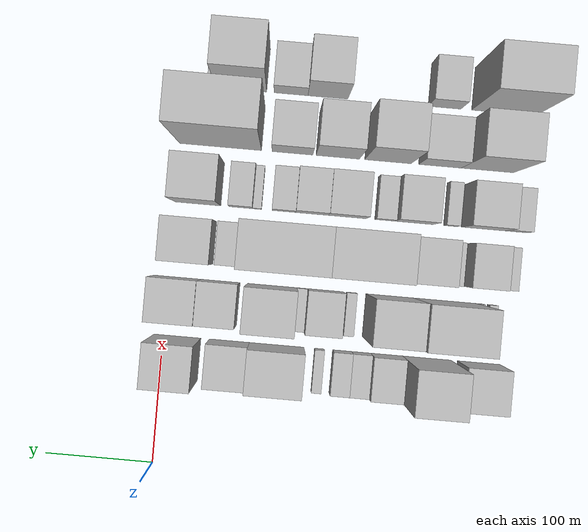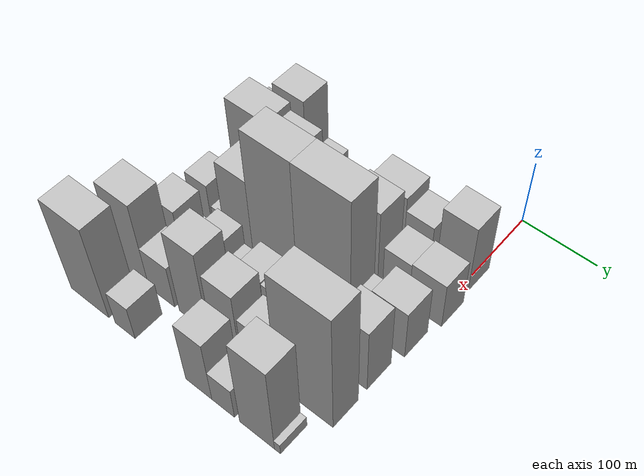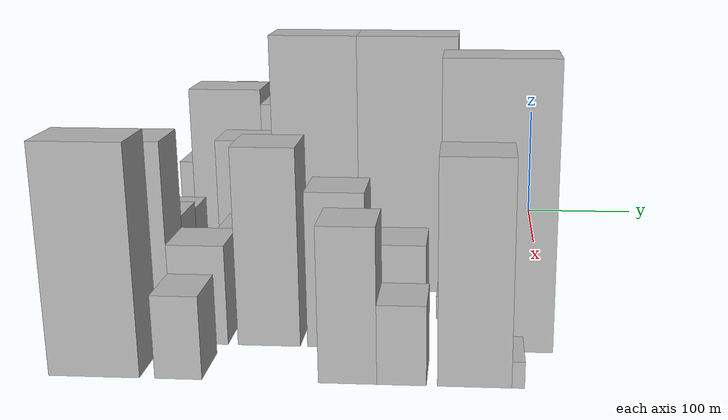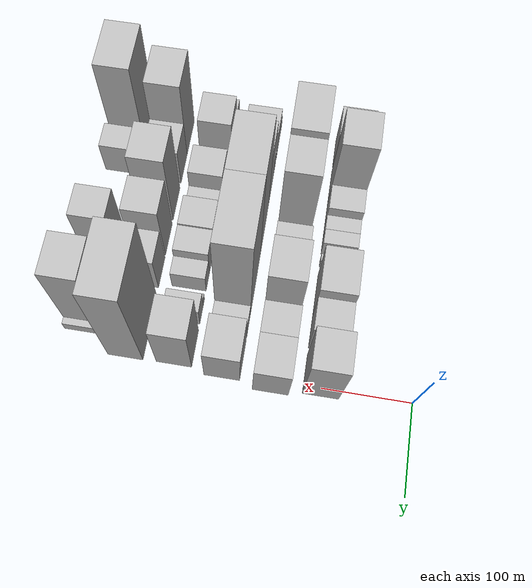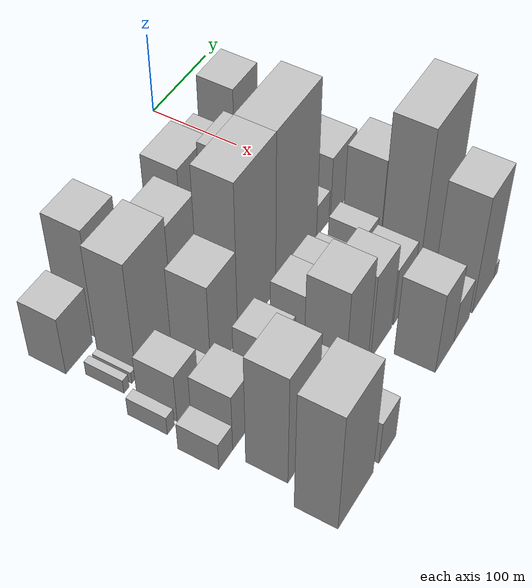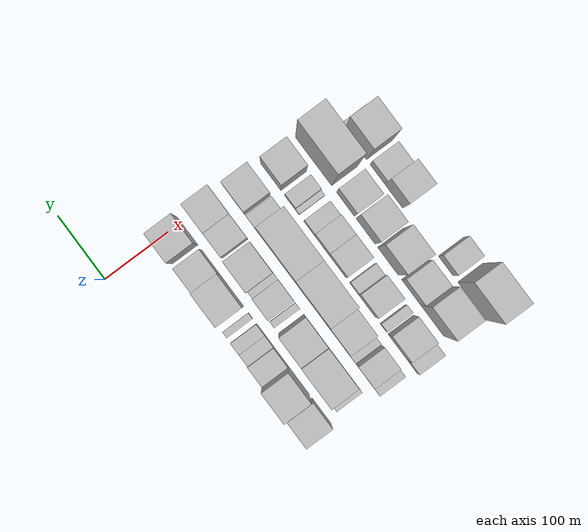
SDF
<sdf version="1.6">
 <world name="default">
  <model name="building_16">
   <static>1</static>
   <pose>100.0000 -296.1378 0 0.000000 0.000000 0.000000</pose>
   <link name="link">
    <pose>0 0 37.50 0 0 0</pose>
    <collision name="collision"><geometry><box><size>40.0000 39.8042 75.0000</size></box></geometry></collision>
    <visual name="visual">
     <cast_shadows>0</cast_shadows>
     <geometry><box><size>40.0000 39.8042 75.0000</size></box></geometry>
     <material>
      <script>
       <uri>model://HANNAS_wall/materials/scripts</uri>
       <uri>model://HANNAS_wall/materials/textures</uri>
       <name>vrc/HANNAS_wall</name>
      </script>
     </material>
    </visual>
   </link>
  </model>
  <model name="building_17">
   <static>1</static>
   <pose>100.0000 -247.5709 0 0.000000 0.000000 0.000000</pose>
   <link name="link">
    <pose>0 0 70.50 0 0 0</pose>
    <collision name="collision"><geometry><box><size>40.0000 45.3294 141.0000</size></box></geometry></collision>
    <visual name="visual">
     <cast_shadows>0</cast_shadows>
     <geometry><box><size>40.0000 45.3294 141.0000</size></box></geometry>
     <material>
      <script>
       <uri>model://HANNAS_wall/materials/scripts</uri>
       <uri>model://HANNAS_wall/materials/textures</uri>
       <name>vrc/HANNAS_wall</name>
      </script>
     </material>
    </visual>
   </link>
  </model>
  <model name="building_18">
   <static>1</static>
   <pose>100.0000 -209.9071 0 0.000000 0.000000 0.000000</pose>
   <link name="link">
    <pose>0 0 25.50 0 0 0</pose>
    <collision name="collision"><geometry><box><size>40.0000 29.9982 51.0000</size></box></geometry></collision>
    <visual name="visual">
     <cast_shadows>0</cast_shadows>
     <geometry><box><size>40.0000 29.9982 51.0000</size></box></geometry>
     <material>
      <script>
       <uri>model://HANNAS_wall/materials/scripts</uri>
       <uri>model://HANNAS_wall/materials/textures</uri>
       <name>vrc/HANNAS_wall</name>
      </script>
     </material>
    </visual>
   </link>
  </model>
  <model name="building_19">
   <static>1</static>
   <pose>100.0000 -185.9173 0 0.000000 0.000000 0.000000</pose>
   <link name="link">
    <pose>0 0 16.50 0 0 0</pose>
    <collision name="collision"><geometry><box><size>40.0000 17.9815 33.0000</size></box></geometry></collision>
    <visual name="visual">
     <cast_shadows>0</cast_shadows>
     <geometry><box><size>40.0000 17.9815 33.0000</size></box></geometry>
     <material>
      <script>
       <uri>model://HANNAS_wall/materials/scripts</uri>
       <uri>model://HANNAS_wall/materials/textures</uri>
       <name>vrc/HANNAS_wall</name>
      </script>
     </material>
    </visual>
   </link>
  </model>
  <model name="building_20">
   <static>1</static>
   <pose>100.0000 -167.9910 0 0.000000 0.000000 0.000000</pose>
   <link name="link">
    <pose>0 0 16.50 0 0 0</pose>
    <collision name="collision"><geometry><box><size>40.0000 17.8710 33.0000</size></box></geometry></collision>
    <visual name="visual">
     <cast_shadows>0</cast_shadows>
     <geometry><box><size>40.0000 17.8710 33.0000</size></box></geometry>
     <material>
      <script>
       <uri>model://HANNAS_wall/materials/scripts</uri>
       <uri>model://HANNAS_wall/materials/textures</uri>
       <name>vrc/HANNAS_wall</name>
      </script>
     </material>
    </visual>
   </link>
  </model>
  <model name="building_21">
   <static>1</static>
   <pose>100.0000 -146.5413 0 0.000000 0.000000 0.000000</pose>
   <link name="link">
    <pose>0 0 10.50 0 0 0</pose>
    <collision name="collision"><geometry><box><size>40.0000 9.0284 21.0000</size></box></geometry></collision>
    <visual name="visual">
     <cast_shadows>0</cast_shadows>
     <geometry><box><size>40.0000 9.0284 21.0000</size></box></geometry>
     <material>
      <script>
       <uri>model://HANNAS_wall/materials/scripts</uri>
       <uri>model://HANNAS_wall/materials/textures</uri>
       <name>vrc/HANNAS_wall</name>
      </script>
     </material>
    </visual>
   </link>
  </model>
  <model name="building_22">
   <static>1</static>
   <pose>100.0000 -106.4332 0 0.000000 0.000000 0.000000</pose>
   <link name="link">
    <pose>0 0 45.00 0 0 0</pose>
    <collision name="collision"><geometry><box><size>40.0000 51.1879 90.0000</size></box></geometry></collision>
    <visual name="visual">
     <cast_shadows>0</cast_shadows>
     <geometry><box><size>40.0000 51.1879 90.0000</size></box></geometry>
     <material>
      <script>
       <uri>model://HANNAS_wall/materials/scripts</uri>
       <uri>model://HANNAS_wall/materials/textures</uri>
       <name>vrc/HANNAS_wall</name>
      </script>
     </material>
    </visual>
   </link>
  </model>
  <model name="building_23">
   <static>1</static>
   <pose>100.0000 -62.1196 0 0.000000 0.000000 0.000000</pose>
   <link name="link">
    <pose>0 0 34.50 0 0 0</pose>
    <collision name="collision"><geometry><box><size>40.0000 37.4392 69.0000</size></box></geometry></collision>
    <visual name="visual">
     <cast_shadows>0</cast_shadows>
     <geometry><box><size>40.0000 37.4392 69.0000</size></box></geometry>
     <material>
      <script>
       <uri>model://HANNAS_wall/materials/scripts</uri>
       <uri>model://HANNAS_wall/materials/textures</uri>
       <name>vrc/HANNAS_wall</name>
      </script>
     </material>
    </visual>
   </link>
  </model>
  <model name="building_24">
   <static>1</static>
   <pose>100.0000 -13.4017 0 0.000000 0.000000 0.000000</pose>
   <link name="link">
    <pose>0 0 55.50 0 0 0</pose>
    <collision name="collision"><geometry><box><size>40.0000 43.9966 111.0000</size></box></geometry></collision>
    <visual name="visual">
     <cast_shadows>0</cast_shadows>
     <geometry><box><size>40.0000 43.9966 111.0000</size></box></geometry>
     <material>
      <script>
       <uri>model://HANNAS_wall/materials/scripts</uri>
       <uri>model://HANNAS_wall/materials/textures</uri>
       <name>vrc/HANNAS_wall</name>
      </script>
     </material>
    </visual>
   </link>
  </model>
  <model name="building_70">
   <static>1</static>
   <pose>155.0000 -303.4905 0 0.000000 0.000000 0.000000</pose>
   <link name="link">
    <pose>0 0 9.00 0 0 0</pose>
    <collision name="collision"><geometry><box><size>40.0000 7.8875 18.0000</size></box></geometry></collision>
    <visual name="visual">
     <cast_shadows>0</cast_shadows>
     <geometry><box><size>40.0000 7.8875 18.0000</size></box></geometry>
     <material>
      <script>
       <uri>model://HANNAS_wall/materials/scripts</uri>
       <uri>model://HANNAS_wall/materials/textures</uri>
       <name>vrc/HANNAS_wall</name>
      </script>
     </material>
    </visual>
   </link>
  </model>
  <model name="building_71">
   <static>1</static>
   <pose>155.0000 -292.1097 0 0.000000 0.000000 0.000000</pose>
   <link name="link">
    <pose>0 0 7.50 0 0 0</pose>
    <collision name="collision"><geometry><box><size>40.0000 6.8742 15.0000</size></box></geometry></collision>
    <visual name="visual">
     <cast_shadows>0</cast_shadows>
     <geometry><box><size>40.0000 6.8742 15.0000</size></box></geometry>
     <material>
      <script>
       <uri>model://HANNAS_wall/materials/scripts</uri>
       <uri>model://HANNAS_wall/materials/textures</uri>
       <name>vrc/HANNAS_wall</name>
      </script>
     </material>
    </visual>
   </link>
  </model>
  <model name="building_72">
   <static>1</static>
   <pose>155.0000 -259.3034 0 0.000000 0.000000 0.000000</pose>
   <link name="link">
    <pose>0 0 75.00 0 0 0</pose>
    <collision name="collision"><geometry><box><size>40.0000 58.7383 150.0000</size></box></geometry></collision>
    <visual name="visual">
     <cast_shadows>0</cast_shadows>
     <geometry><box><size>40.0000 58.7383 150.0000</size></box></geometry>
     <material>
      <script>
       <uri>model://HANNAS_wall/materials/scripts</uri>
       <uri>model://HANNAS_wall/materials/textures</uri>
       <name>vrc/HANNAS_wall</name>
      </script>
     </material>
    </visual>
   </link>
  </model>
  <model name="building_73">
   <static>1</static>
   <pose>155.0000 -207.7042 0 0.000000 0.000000 0.000000</pose>
   <link name="link">
    <pose>0 0 69.00 0 0 0</pose>
    <collision name="collision"><geometry><box><size>40.0000 44.4602 138.0000</size></box></geometry></collision>
    <visual name="visual">
     <cast_shadows>0</cast_shadows>
     <geometry><box><size>40.0000 44.4602 138.0000</size></box></geometry>
     <material>
      <script>
       <uri>model://HANNAS_wall/materials/scripts</uri>
       <uri>model://HANNAS_wall/materials/textures</uri>
       <name>vrc/HANNAS_wall</name>
      </script>
     </material>
    </visual>
   </link>
  </model>
  <model name="building_74">
   <static>1</static>
   <pose>155.0000 -171.7749 0 0.000000 0.000000 0.000000</pose>
   <link name="link">
    <pose>0 0 10.50 0 0 0</pose>
    <collision name="collision"><geometry><box><size>40.0000 9.3984 21.0000</size></box></geometry></collision>
    <visual name="visual">
     <cast_shadows>0</cast_shadows>
     <geometry><box><size>40.0000 9.3984 21.0000</size></box></geometry>
     <material>
      <script>
       <uri>model://HANNAS_wall/materials/scripts</uri>
       <uri>model://HANNAS_wall/materials/textures</uri>
       <name>vrc/HANNAS_wall</name>
      </script>
     </material>
    </visual>
   </link>
  </model>
  <model name="building_75">
   <static>1</static>
   <pose>155.0000 -147.3558 0 0.000000 0.000000 0.000000</pose>
   <link name="link">
    <pose>0 0 31.50 0 0 0</pose>
    <collision name="collision"><geometry><box><size>40.0000 33.4397 63.0000</size></box></geometry></collision>
    <visual name="visual">
     <cast_shadows>0</cast_shadows>
     <geometry><box><size>40.0000 33.4397 63.0000</size></box></geometry>
     <material>
      <script>
       <uri>model://HANNAS_wall/materials/scripts</uri>
       <uri>model://HANNAS_wall/materials/textures</uri>
       <name>vrc/HANNAS_wall</name>
      </script>
     </material>
    </visual>
   </link>
  </model>
  <model name="building_76">
   <static>1</static>
   <pose>155.0000 -125.5573 0 0.000000 0.000000 0.000000</pose>
   <link name="link">
    <pose>0 0 10.50 0 0 0</pose>
    <collision name="collision"><geometry><box><size>40.0000 10.1575 21.0000</size></box></geometry></collision>
    <visual name="visual">
     <cast_shadows>0</cast_shadows>
     <geometry><box><size>40.0000 10.1575 21.0000</size></box></geometry>
     <material>
      <script>
       <uri>model://HANNAS_wall/materials/scripts</uri>
       <uri>model://HANNAS_wall/materials/textures</uri>
       <name>vrc/HANNAS_wall</name>
      </script>
     </material>
    </visual>
   </link>
  </model>
  <model name="building_77">
   <static>1</static>
   <pose>155.0000 -97.4582 0 0.000000 0.000000 0.000000</pose>
   <link name="link">
    <pose>0 0 61.50 0 0 0</pose>
    <collision name="collision"><geometry><box><size>40.0000 46.0406 123.0000</size></box></geometry></collision>
    <visual name="visual">
     <cast_shadows>0</cast_shadows>
     <geometry><box><size>40.0000 46.0406 123.0000</size></box></geometry>
     <material>
      <script>
       <uri>model://HANNAS_wall/materials/scripts</uri>
       <uri>model://HANNAS_wall/materials/textures</uri>
       <name>vrc/HANNAS_wall</name>
      </script>
     </material>
    </visual>
   </link>
  </model>
  <model name="building_78">
   <static>1</static>
   <pose>155.0000 -49.2746 0 0.000000 0.000000 0.000000</pose>
   <link name="link">
    <pose>0 0 36.00 0 0 0</pose>
    <collision name="collision"><geometry><box><size>40.0000 36.3266 72.0000</size></box></geometry></collision>
    <visual name="visual">
     <cast_shadows>0</cast_shadows>
     <geometry><box><size>40.0000 36.3266 72.0000</size></box></geometry>
     <material>
      <script>
       <uri>model://HANNAS_wall/materials/scripts</uri>
       <uri>model://HANNAS_wall/materials/textures</uri>
       <name>vrc/HANNAS_wall</name>
      </script>
     </material>
    </visual>
   </link>
  </model>
  <model name="building_79">
   <static>1</static>
   <pose>155.0000 -8.9823 0 0.000000 0.000000 0.000000</pose>
   <link name="link">
    <pose>0 0 37.50 0 0 0</pose>
    <collision name="collision"><geometry><box><size>40.0000 44.2579 75.0000</size></box></geometry></collision>
    <visual name="visual">
     <cast_shadows>0</cast_shadows>
     <geometry><box><size>40.0000 44.2579 75.0000</size></box></geometry>
     <material>
      <script>
       <uri>model://HANNAS_wall/materials/scripts</uri>
       <uri>model://HANNAS_wall/materials/textures</uri>
       <name>vrc/HANNAS_wall</name>
      </script>
     </material>
    </visual>
   </link>
  </model>
  <model name="building_117">
   <static>1</static>
   <pose>210.0000 -318.1123 0 0.000000 0.000000 0.000000</pose>
   <link name="link">
    <pose>0 0 12.00 0 0 0</pose>
    <collision name="collision"><geometry><box><size>40.0000 10.9573 24.0000</size></box></geometry></collision>
    <visual name="visual">
     <cast_shadows>0</cast_shadows>
     <geometry><box><size>40.0000 10.9573 24.0000</size></box></geometry>
     <material>
      <script>
       <uri>model://HANNAS_wall/materials/scripts</uri>
       <uri>model://HANNAS_wall/materials/textures</uri>
       <name>vrc/HANNAS_wall</name>
      </script>
     </material>
    </visual>
   </link>
  </model>
  <model name="building_118">
   <static>1</static>
   <pose>210.0000 -291.8791 0 0.000000 0.000000 0.000000</pose>
   <link name="link">
    <pose>0 0 31.50 0 0 0</pose>
    <collision name="collision"><geometry><box><size>40.0000 33.5091 63.0000</size></box></geometry></collision>
    <visual name="visual">
     <cast_shadows>0</cast_shadows>
     <geometry><box><size>40.0000 33.5091 63.0000</size></box></geometry>
     <material>
      <script>
       <uri>model://HANNAS_wall/materials/scripts</uri>
       <uri>model://HANNAS_wall/materials/textures</uri>
       <name>vrc/HANNAS_wall</name>
      </script>
     </material>
    </visual>
   </link>
  </model>
  <model name="building_119">
   <static>1</static>
   <pose>210.0000 -263.5239 0 0.000000 0.000000 0.000000</pose>
   <link name="link">
    <pose>0 0 15.00 0 0 0</pose>
    <collision name="collision"><geometry><box><size>40.0000 17.2013 30.0000</size></box></geometry></collision>
    <visual name="visual">
     <cast_shadows>0</cast_shadows>
     <geometry><box><size>40.0000 17.2013 30.0000</size></box></geometry>
     <material>
      <script>
       <uri>model://HANNAS_wall/materials/scripts</uri>
       <uri>model://HANNAS_wall/materials/textures</uri>
       <name>vrc/HANNAS_wall</name>
      </script>
     </material>
    </visual>
   </link>
  </model>
  <model name="building_120">
   <static>1</static>
   <pose>210.0000 -232.6788 0 0.000000 0.000000 0.000000</pose>
   <link name="link">
    <pose>0 0 60.00 0 0 0</pose>
    <collision name="collision"><geometry><box><size>40.0000 44.4890 120.0000</size></box></geometry></collision>
    <visual name="visual">
     <cast_shadows>0</cast_shadows>
     <geometry><box><size>40.0000 44.4890 120.0000</size></box></geometry>
     <material>
      <script>
       <uri>model://HANNAS_wall/materials/scripts</uri>
       <uri>model://HANNAS_wall/materials/textures</uri>
       <name>vrc/HANNAS_wall</name>
      </script>
     </material>
    </visual>
   </link>
  </model>
  <model name="building_121">
   <static>1</static>
   <pose>210.0000 -177.3393 0 0.000000 0.000000 0.000000</pose>
   <link name="link">
    <pose>0 0 100.50 0 0 0</pose>
    <collision name="collision"><geometry><box><size>40.0000 66.1899 201.0000</size></box></geometry></collision>
    <visual name="visual">
     <cast_shadows>0</cast_shadows>
     <geometry><box><size>40.0000 66.1899 201.0000</size></box></geometry>
     <material>
      <script>
       <uri>model://HANNAS_wall/materials/scripts</uri>
       <uri>model://HANNAS_wall/materials/textures</uri>
       <name>vrc/HANNAS_wall</name>
      </script>
     </material>
    </visual>
   </link>
  </model>
  <model name="building_122">
   <static>1</static>
   <pose>210.0000 -106.1321 0 0.000000 0.000000 0.000000</pose>
   <link name="link">
    <pose>0 0 100.50 0 0 0</pose>
    <collision name="collision"><geometry><box><size>40.0000 76.2245 201.0000</size></box></geometry></collision>
    <visual name="visual">
     <cast_shadows>0</cast_shadows>
     <geometry><box><size>40.0000 76.2245 201.0000</size></box></geometry>
     <material>
      <script>
       <uri>model://HANNAS_wall/materials/scripts</uri>
       <uri>model://HANNAS_wall/materials/textures</uri>
       <name>vrc/HANNAS_wall</name>
      </script>
     </material>
    </visual>
   </link>
  </model>
  <model name="building_123">
   <static>1</static>
   <pose>210.0000 -55.7911 0 0.000000 0.000000 0.000000</pose>
   <link name="link">
    <pose>0 0 21.00 0 0 0</pose>
    <collision name="collision"><geometry><box><size>40.0000 24.4575 42.0000</size></box></geometry></collision>
    <visual name="visual">
     <cast_shadows>0</cast_shadows>
     <geometry><box><size>40.0000 24.4575 42.0000</size></box></geometry>
     <material>
      <script>
       <uri>model://HANNAS_wall/materials/scripts</uri>
       <uri>model://HANNAS_wall/materials/textures</uri>
       <name>vrc/HANNAS_wall</name>
      </script>
     </material>
    </visual>
   </link>
  </model>
  <model name="building_124">
   <static>1</static>
   <pose>210.0000 -17.4130 0 0.000000 0.000000 0.000000</pose>
   <link name="link">
    <pose>0 0 40.50 0 0 0</pose>
    <collision name="collision"><geometry><box><size>40.0000 46.2987 81.0000</size></box></geometry></collision>
    <visual name="visual">
     <cast_shadows>0</cast_shadows>
     <geometry><box><size>40.0000 46.2987 81.0000</size></box></geometry>
     <material>
      <script>
       <uri>model://HANNAS_wall/materials/scripts</uri>
       <uri>model://HANNAS_wall/materials/textures</uri>
       <name>vrc/HANNAS_wall</name>
      </script>
     </material>
    </visual>
   </link>
  </model>
  <model name="building_164">
   <static>1</static>
   <pose>265.0000 -319.8297 0 0.000000 0.000000 0.000000</pose>
   <link name="link">
    <pose>0 0 18.00 0 0 0</pose>
    <collision name="collision"><geometry><box><size>40.0000 21.5561 36.0000</size></box></geometry></collision>
    <visual name="visual">
     <cast_shadows>0</cast_shadows>
     <geometry><box><size>40.0000 21.5561 36.0000</size></box></geometry>
     <material>
      <script>
       <uri>model://HANNAS_wall/materials/scripts</uri>
       <uri>model://HANNAS_wall/materials/textures</uri>
       <name>vrc/HANNAS_wall</name>
      </script>
     </material>
    </visual>
   </link>
  </model>
  <model name="building_165">
   <static>1</static>
   <pose>265.0000 -289.0322 0 0.000000 0.000000 0.000000</pose>
   <link name="link">
    <pose>0 0 37.50 0 0 0</pose>
    <collision name="collision"><geometry><box><size>40.0000 40.0387 75.0000</size></box></geometry></collision>
    <visual name="visual">
     <cast_shadows>0</cast_shadows>
     <geometry><box><size>40.0000 40.0387 75.0000</size></box></geometry>
     <material>
      <script>
       <uri>model://HANNAS_wall/materials/scripts</uri>
       <uri>model://HANNAS_wall/materials/textures</uri>
       <name>vrc/HANNAS_wall</name>
      </script>
     </material>
    </visual>
   </link>
  </model>
  <model name="building_166">
   <static>1</static>
   <pose>265.0000 -258.6447 0 0.000000 0.000000 0.000000</pose>
   <link name="link">
    <pose>0 0 13.50 0 0 0</pose>
    <collision name="collision"><geometry><box><size>40.0000 12.7364 27.0000</size></box></geometry></collision>
    <visual name="visual">
     <cast_shadows>0</cast_shadows>
     <geometry><box><size>40.0000 12.7364 27.0000</size></box></geometry>
     <material>
      <script>
       <uri>model://HANNAS_wall/materials/scripts</uri>
       <uri>model://HANNAS_wall/materials/textures</uri>
       <name>vrc/HANNAS_wall</name>
      </script>
     </material>
    </visual>
   </link>
  </model>
  <model name="building_167">
   <static>1</static>
   <pose>265.0000 -224.0963 0 0.000000 0.000000 0.000000</pose>
   <link name="link">
    <pose>0 0 33.00 0 0 0</pose>
    <collision name="collision"><geometry><box><size>40.0000 36.3604 66.0000</size></box></geometry></collision>
    <visual name="visual">
     <cast_shadows>0</cast_shadows>
     <geometry><box><size>40.0000 36.3604 66.0000</size></box></geometry>
     <material>
      <script>
       <uri>model://HANNAS_wall/materials/scripts</uri>
       <uri>model://HANNAS_wall/materials/textures</uri>
       <name>vrc/HANNAS_wall</name>
      </script>
     </material>
    </visual>
   </link>
  </model>
  <model name="building_168">
   <static>1</static>
   <pose>265.0000 -196.7572 0 0.000000 0.000000 0.000000</pose>
   <link name="link">
    <pose>0 0 16.50 0 0 0</pose>
    <collision name="collision"><geometry><box><size>40.0000 18.3178 33.0000</size></box></geometry></collision>
    <visual name="visual">
     <cast_shadows>0</cast_shadows>
     <geometry><box><size>40.0000 18.3178 33.0000</size></box></geometry>
     <material>
      <script>
       <uri>model://HANNAS_wall/materials/scripts</uri>
       <uri>model://HANNAS_wall/materials/textures</uri>
       <name>vrc/HANNAS_wall</name>
      </script>
     </material>
    </visual>
   </link>
  </model>
  <model name="building_169">
   <static>1</static>
   <pose>265.0000 -161.6780 0 0.000000 0.000000 0.000000</pose>
   <link name="link">
    <pose>0 0 30.00 0 0 0</pose>
    <collision name="collision"><geometry><box><size>40.0000 35.8407 60.0000</size></box></geometry></collision>
    <visual name="visual">
     <cast_shadows>0</cast_shadows>
     <geometry><box><size>40.0000 35.8407 60.0000</size></box></geometry>
     <material>
      <script>
       <uri>model://HANNAS_wall/materials/scripts</uri>
       <uri>model://HANNAS_wall/materials/textures</uri>
       <name>vrc/HANNAS_wall</name>
      </script>
     </material>
    </visual>
   </link>
  </model>
  <model name="building_170">
   <static>1</static>
   <pose>265.0000 -128.5585 0 0.000000 0.000000 0.000000</pose>
   <link name="link">
    <pose>0 0 28.50 0 0 0</pose>
    <collision name="collision"><geometry><box><size>40.0000 30.3983 57.0000</size></box></geometry></collision>
    <visual name="visual">
     <cast_shadows>0</cast_shadows>
     <geometry><box><size>40.0000 30.3983 57.0000</size></box></geometry>
     <material>
      <script>
       <uri>model://HANNAS_wall/materials/scripts</uri>
       <uri>model://HANNAS_wall/materials/textures</uri>
       <name>vrc/HANNAS_wall</name>
      </script>
     </material>
    </visual>
   </link>
  </model>
  <model name="building_171">
   <static>1</static>
   <pose>265.0000 -102.3649 0 0.000000 0.000000 0.000000</pose>
   <link name="link">
    <pose>0 0 19.50 0 0 0</pose>
    <collision name="collision"><geometry><box><size>40.0000 21.9888 39.0000</size></box></geometry></collision>
    <visual name="visual">
     <cast_shadows>0</cast_shadows>
     <geometry><box><size>40.0000 21.9888 39.0000</size></box></geometry>
     <material>
      <script>
       <uri>model://HANNAS_wall/materials/scripts</uri>
       <uri>model://HANNAS_wall/materials/textures</uri>
       <name>vrc/HANNAS_wall</name>
      </script>
     </material>
    </visual>
   </link>
  </model>
  <model name="building_172">
   <static>1</static>
   <pose>265.0000 -77.3118 0 0.000000 0.000000 0.000000</pose>
   <link name="link">
    <pose>0 0 9.00 0 0 0</pose>
    <collision name="collision"><geometry><box><size>40.0000 8.1174 18.0000</size></box></geometry></collision>
    <visual name="visual">
     <cast_shadows>0</cast_shadows>
     <geometry><box><size>40.0000 8.1174 18.0000</size></box></geometry>
     <material>
      <script>
       <uri>model://HANNAS_wall/materials/scripts</uri>
       <uri>model://HANNAS_wall/materials/textures</uri>
       <name>vrc/HANNAS_wall</name>
      </script>
     </material>
    </visual>
   </link>
  </model>
  <model name="building_173">
   <static>1</static>
   <pose>265.0000 -62.1522 0 0.000000 0.000000 0.000000</pose>
   <link name="link">
    <pose>0 0 21.00 0 0 0</pose>
    <collision name="collision"><geometry><box><size>40.0000 22.2018 42.0000</size></box></geometry></collision>
    <visual name="visual">
     <cast_shadows>0</cast_shadows>
     <geometry><box><size>40.0000 22.2018 42.0000</size></box></geometry>
     <material>
      <script>
       <uri>model://HANNAS_wall/materials/scripts</uri>
       <uri>model://HANNAS_wall/materials/textures</uri>
       <name>vrc/HANNAS_wall</name>
      </script>
     </material>
    </visual>
   </link>
  </model>
  <model name="building_174">
   <static>1</static>
   <pose>265.0000 -21.7586 0 0.000000 0.000000 0.000000</pose>
   <link name="link">
    <pose>0 0 54.00 0 0 0</pose>
    <collision name="collision"><geometry><box><size>40.0000 42.5854 108.0000</size></box></geometry></collision>
    <visual name="visual">
     <cast_shadows>0</cast_shadows>
     <geometry><box><size>40.0000 42.5854 108.0000</size></box></geometry>
     <material>
      <script>
       <uri>model://HANNAS_wall/materials/scripts</uri>
       <uri>model://HANNAS_wall/materials/textures</uri>
       <name>vrc/HANNAS_wall</name>
      </script>
     </material>
    </visual>
   </link>
  </model>
  <model name="building_215">
   <static>1</static>
   <pose>320.0000 -288.4957 0 0.000000 0.000000 0.000000</pose>
   <link name="link">
    <pose>0 0 72.00 0 0 0</pose>
    <collision name="collision"><geometry><box><size>40.0000 49.1863 144.0000</size></box></geometry></collision>
    <visual name="visual">
     <cast_shadows>0</cast_shadows>
     <geometry><box><size>40.0000 49.1863 144.0000</size></box></geometry>
     <material>
      <script>
       <uri>model://HANNAS_wall/materials/scripts</uri>
       <uri>model://HANNAS_wall/materials/textures</uri>
       <name>vrc/HANNAS_wall</name>
      </script>
     </material>
    </visual>
   </link>
  </model>
  <model name="building_216">
   <static>1</static>
   <pose>320.0000 -243.9485 0 0.000000 0.000000 0.000000</pose>
   <link name="link">
    <pose>0 0 36.00 0 0 0</pose>
    <collision name="collision"><geometry><box><size>40.0000 39.9082 72.0000</size></box></geometry></collision>
    <visual name="visual">
     <cast_shadows>0</cast_shadows>
     <geometry><box><size>40.0000 39.9082 72.0000</size></box></geometry>
     <material>
      <script>
       <uri>model://HANNAS_wall/materials/scripts</uri>
       <uri>model://HANNAS_wall/materials/textures</uri>
       <name>vrc/HANNAS_wall</name>
      </script>
     </material>
    </visual>
   </link>
  </model>
  <model name="building_217">
   <static>1</static>
   <pose>320.0000 -195.1925 0 0.000000 0.000000 0.000000</pose>
   <link name="link">
    <pose>0 0 70.50 0 0 0</pose>
    <collision name="collision"><geometry><box><size>40.0000 43.6037 141.0000</size></box></geometry></collision>
    <visual name="visual">
     <cast_shadows>0</cast_shadows>
     <geometry><box><size>40.0000 43.6037 141.0000</size></box></geometry>
     <material>
      <script>
       <uri>model://HANNAS_wall/materials/scripts</uri>
       <uri>model://HANNAS_wall/materials/textures</uri>
       <name>vrc/HANNAS_wall</name>
      </script>
     </material>
    </visual>
   </link>
  </model>
  <model name="building_218">
   <static>1</static>
   <pose>320.0000 -147.9862 0 0.000000 0.000000 0.000000</pose>
   <link name="link">
    <pose>0 0 55.50 0 0 0</pose>
    <collision name="collision"><geometry><box><size>40.0000 40.8087 111.0000</size></box></geometry></collision>
    <visual name="visual">
     <cast_shadows>0</cast_shadows>
     <geometry><box><size>40.0000 40.8087 111.0000</size></box></geometry>
     <material>
      <script>
       <uri>model://HANNAS_wall/materials/scripts</uri>
       <uri>model://HANNAS_wall/materials/textures</uri>
       <name>vrc/HANNAS_wall</name>
      </script>
     </material>
    </visual>
   </link>
  </model>
  <model name="building_219">
   <static>1</static>
   <pose>320.0000 -105.5208 0 0.000000 0.000000 0.000000</pose>
   <link name="link">
    <pose>0 0 37.50 0 0 0</pose>
    <collision name="collision"><geometry><box><size>40.0000 38.1222 75.0000</size></box></geometry></collision>
    <visual name="visual">
     <cast_shadows>0</cast_shadows>
     <geometry><box><size>40.0000 38.1222 75.0000</size></box></geometry>
     <material>
      <script>
       <uri>model://HANNAS_wall/materials/scripts</uri>
       <uri>model://HANNAS_wall/materials/textures</uri>
       <name>vrc/HANNAS_wall</name>
      </script>
     </material>
    </visual>
   </link>
  </model>
  <model name="building_220">
   <static>1</static>
   <pose>320.0000 -38.1067 0 0.000000 0.000000 0.000000</pose>
   <link name="link">
    <pose>0 0 100.50 0 0 0</pose>
    <collision name="collision"><geometry><box><size>40.0000 76.7059 201.0000</size></box></geometry></collision>
    <visual name="visual">
     <cast_shadows>0</cast_shadows>
     <geometry><box><size>40.0000 76.7059 201.0000</size></box></geometry>
     <material>
      <script>
       <uri>model://HANNAS_wall/materials/scripts</uri>
       <uri>model://HANNAS_wall/materials/textures</uri>
       <name>vrc/HANNAS_wall</name>
      </script>
     </material>
    </visual>
   </link>
  </model>
  <model name="building_262">
   <static>1</static>
   <pose>375.0000 -299.0905 0 0.000000 0.000000 0.000000</pose>
   <link name="link">
    <pose>0 0 78.00 0 0 0</pose>
    <collision name="collision"><geometry><box><size>40.0000 60.1275 156.0000</size></box></geometry></collision>
    <visual name="visual">
     <cast_shadows>0</cast_shadows>
     <geometry><box><size>40.0000 60.1275 156.0000</size></box></geometry>
     <material>
      <script>
       <uri>model://HANNAS_wall/materials/scripts</uri>
       <uri>model://HANNAS_wall/materials/textures</uri>
       <name>vrc/HANNAS_wall</name>
      </script>
     </material>
    </visual>
   </link>
  </model>
  <model name="building_263">
   <static>1</static>
   <pose>375.0000 -243.5757 0 0.000000 0.000000 0.000000</pose>
   <link name="link">
    <pose>0 0 28.50 0 0 0</pose>
    <collision name="collision"><geometry><box><size>40.0000 30.9021 57.0000</size></box></geometry></collision>
    <visual name="visual">
     <cast_shadows>0</cast_shadows>
     <geometry><box><size>40.0000 30.9021 57.0000</size></box></geometry>
     <material>
      <script>
       <uri>model://HANNAS_wall/materials/scripts</uri>
       <uri>model://HANNAS_wall/materials/textures</uri>
       <name>vrc/HANNAS_wall</name>
      </script>
     </material>
    </visual>
   </link>
  </model>
  <model name="building_264">
   <static>1</static>
   <pose>375.0000 -133.9025 0 0.000000 0.000000 0.000000</pose>
   <link name="link">
    <pose>0 0 52.50 0 0 0</pose>
    <collision name="collision"><geometry><box><size>40.0000 37.4814 105.0000</size></box></geometry></collision>
    <visual name="visual">
     <cast_shadows>0</cast_shadows>
     <geometry><box><size>40.0000 37.4814 105.0000</size></box></geometry>
     <material>
      <script>
       <uri>model://HANNAS_wall/materials/scripts</uri>
       <uri>model://HANNAS_wall/materials/textures</uri>
       <name>vrc/HANNAS_wall</name>
      </script>
     </material>
    </visual>
   </link>
  </model>
  <model name="building_265">
   <static>1</static>
   <pose>375.0000 -99.3020 0 0.000000 0.000000 0.000000</pose>
   <link name="link">
    <pose>0 0 27.00 0 0 0</pose>
    <collision name="collision"><geometry><box><size>40.0000 31.7197 54.0000</size></box></geometry></collision>
    <visual name="visual">
     <cast_shadows>0</cast_shadows>
     <geometry><box><size>40.0000 31.7197 54.0000</size></box></geometry>
     <material>
      <script>
       <uri>model://HANNAS_wall/materials/scripts</uri>
       <uri>model://HANNAS_wall/materials/textures</uri>
       <name>vrc/HANNAS_wall</name>
      </script>
     </material>
    </visual>
   </link>
  </model>
  <model name="building_266">
   <static>1</static>
   <pose>375.0000 -52.8900 0 0.000000 0.000000 0.000000</pose>
   <link name="link">
    <pose>0 0 75.00 0 0 0</pose>
    <collision name="collision"><geometry><box><size>40.0000 47.1044 150.0000</size></box></geometry></collision>
    <visual name="visual">
     <cast_shadows>0</cast_shadows>
     <geometry><box><size>40.0000 47.1044 150.0000</size></box></geometry>
     <material>
      <script>
       <uri>model://HANNAS_wall/materials/scripts</uri>
       <uri>model://HANNAS_wall/materials/textures</uri>
       <name>vrc/HANNAS_wall</name>
      </script>
     </material>
    </visual>
   </link>
  </model>
  <model name="building_267">
   <static>1</static>
   <pose>375.0000 -25.2759 0 0.000000 0.000000 0.000000</pose>
   <link name="link">
    <pose>0 0 9.00 0 0 0</pose>
    <collision name="collision"><geometry><box><size>40.0000 8.1238 18.0000</size></box></geometry></collision>
    <visual name="visual">
     <cast_shadows>0</cast_shadows>
     <geometry><box><size>40.0000 8.1238 18.0000</size></box></geometry>
     <material>
      <script>
       <uri>model://HANNAS_wall/materials/scripts</uri>
       <uri>model://HANNAS_wall/materials/textures</uri>
       <name>vrc/HANNAS_wall</name>
      </script>
     </material>
    </visual>
   </link>
  </model>
 </world>
</sdf>
